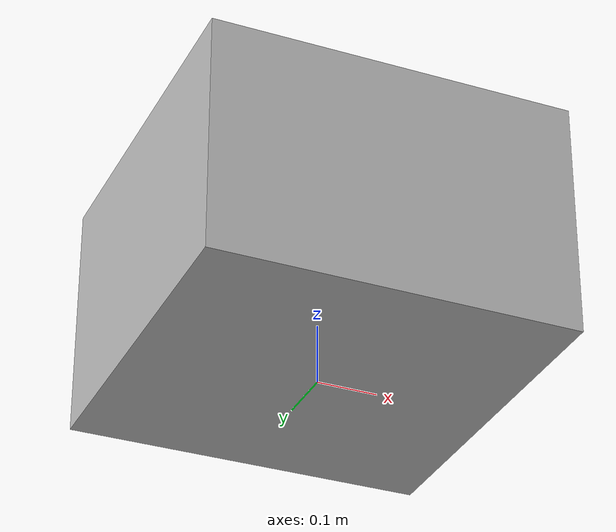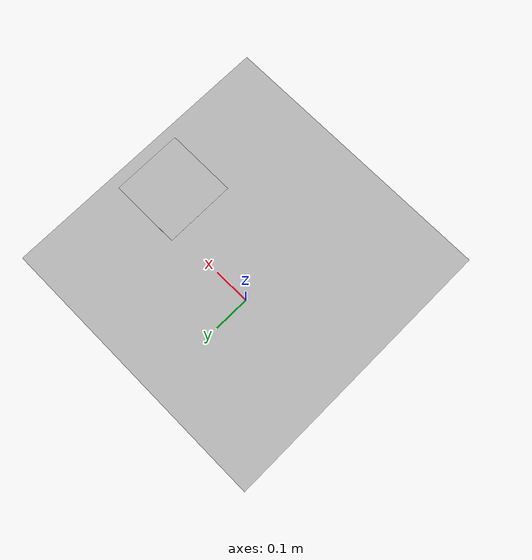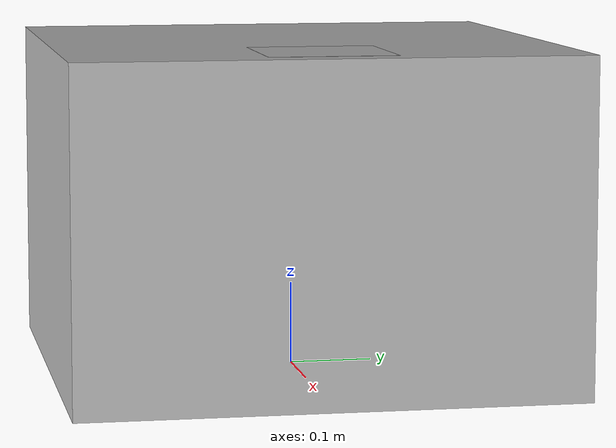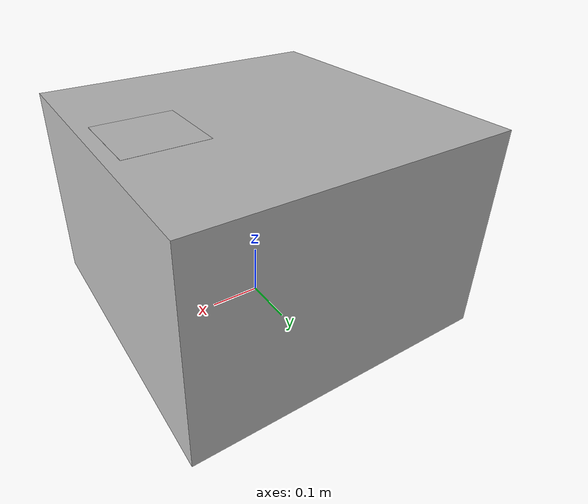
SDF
<?xml version="1.0" ?>
<!-- |    This document was autogenerated by xacro from /home/alaurenzi/code/eurobin_ws/ros_src/eurobin_grasp_box/models/aruco_box/model.sdf.xacro | -->
<!-- |    EDITING THIS FILE BY HAND IS NOT RECOMMENDED                                 | -->
<sdf version="1.6">
  <model name="aruco_box">
    <link name="box">
      <pose>0 0 0.2 0 0 0</pose>
      <inertial>
        <mass>10</mass>
        <inertia>
          <ixx>0.4333333333333333</ixx>
          <ixy>0.0</ixy>
          <ixz>0.0</ixz>
          <iyy>0.4333333333333333</iyy>
          <iyz>0.0</iyz>
          <izz>0.6</izz>
        </inertia>
      </inertial>
      <visual name="box_visual">
        <pose>0 0 0 0 0 0</pose>
        <geometry>
          <box>
            <size>0.6 0.6 0.4</size>
          </box>
        </geometry>
      </visual>
      <collision name="box_collision">
        <pose>0 0 0 0 0 0</pose>
        <geometry>
          <box>
            <size>0.6 0.6 0.4</size>
          </box>
        </geometry>
        <surface>
          <friction>
            <ode>
              <mu>1.0</mu>
              <mu2>1.0</mu2>
            </ode>
          </friction>
          <contact>
            <ode>
              <kp>1000000.0</kp>
              <kd>1.0</kd>
            </ode>
          </contact>
        </surface>
      </collision>
    </link>
    <link name="marker">
      <pose>0.2 0.0 0.401 0 -1.57 0</pose>
      <inertial>
        <pose>0 0 0 0 0 0</pose>
        <mass>0.001</mass>
        <inertia>
          <ixx>3.7499999999999997e-06</ixx>
          <ixy>0.0</ixy>
          <ixz>0.0</ixz>
          <iyy>1.8750008333333333e-06</iyy>
          <iyz>0.0</iyz>
          <izz>1.8750008333333333e-06</izz>
        </inertia>
      </inertial>
      <visual name="front_visual">
        <pose>0.00005 0 0 0 0 0</pose>
        <geometry>
          <box>
            <size>0.0001 0.15 0.15</size>
          </box>
        </geometry>
        <material>
          <script>
            <uri>model://aruco_box/materials/scripts</uri>
            <uri>model://aruco_box/materials/textures</uri>
            <name>Marker1</name>
          </script>
        </material>
      </visual>
      <!-- Hide the marker from the back -->
      <visual name="rear_visual">
        <pose>-0.00005 0 0 0 0 0</pose>
        <geometry>
          <box>
            <size>0.0001 0.15 0.15</size>
          </box>
        </geometry>
      </visual>
      <collision name="collision">
        <pose>0 0 0 0 0 0</pose>
        <geometry>
          <box>
            <size>0.0001 0.15 0.15</size>
          </box>
        </geometry>
      </collision>
    </link>
    <joint name="box_to_marker" type="fixed">
      <parent>box</parent>
      <child>marker</child>
    </joint>
  </model>
</sdf>
